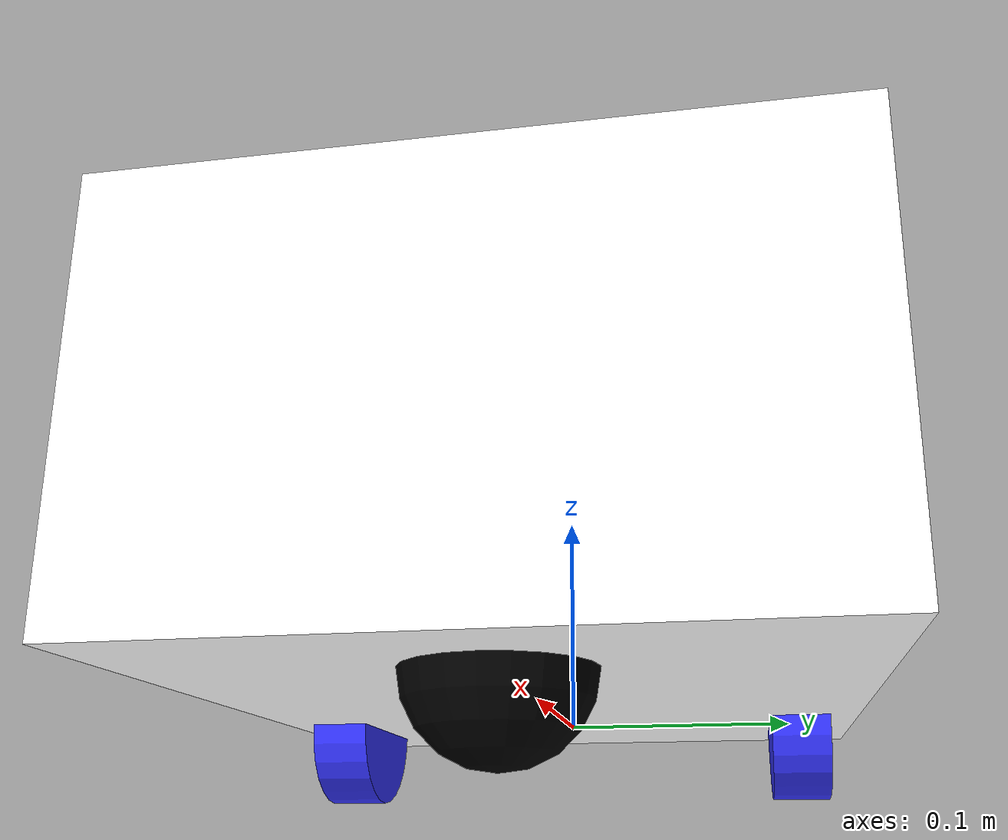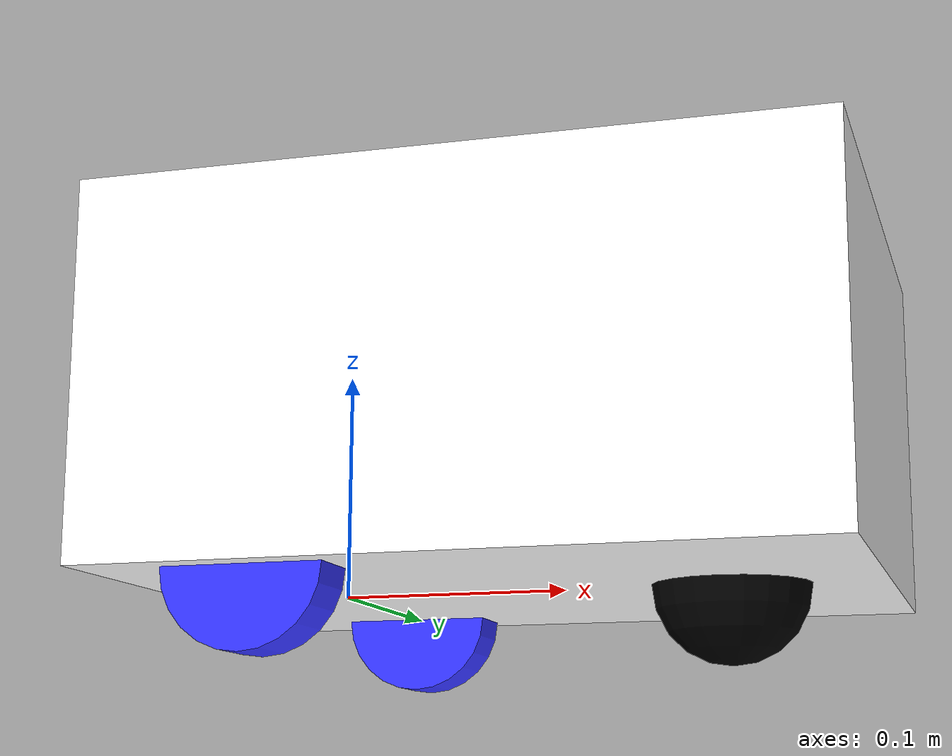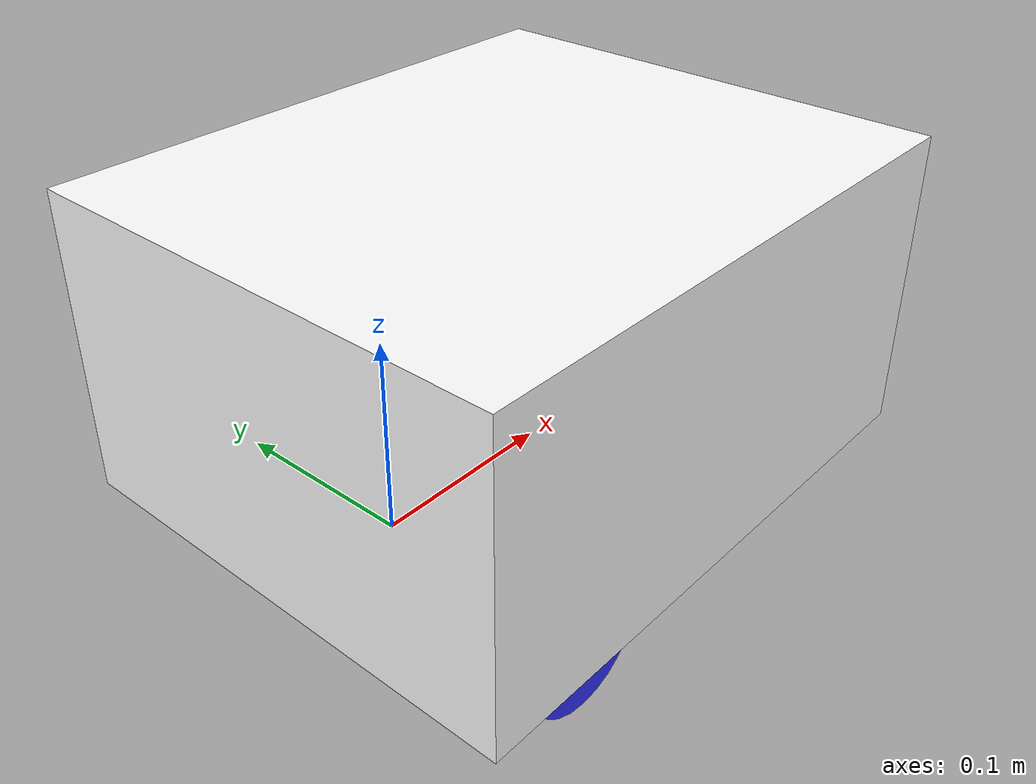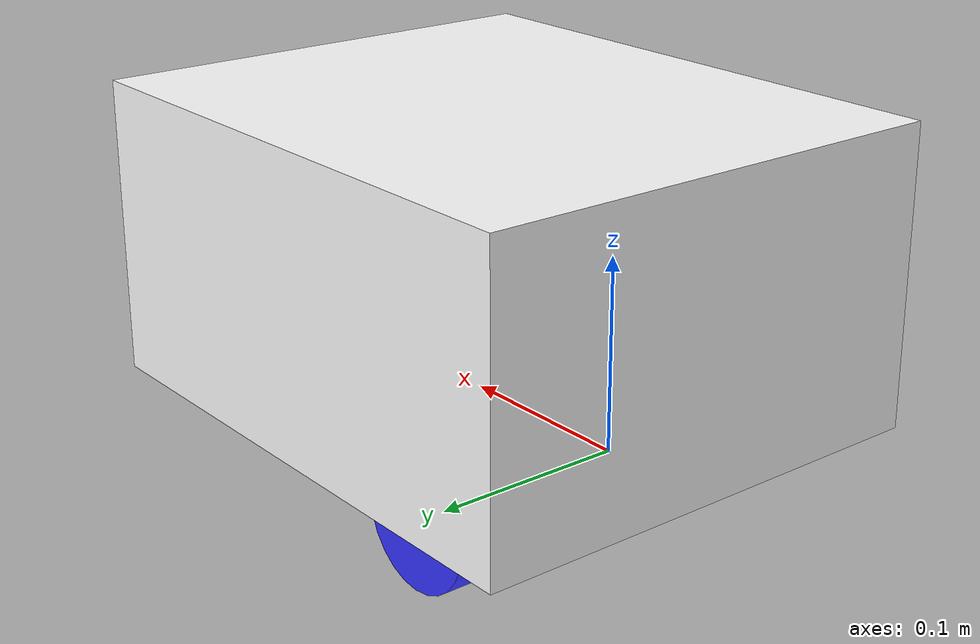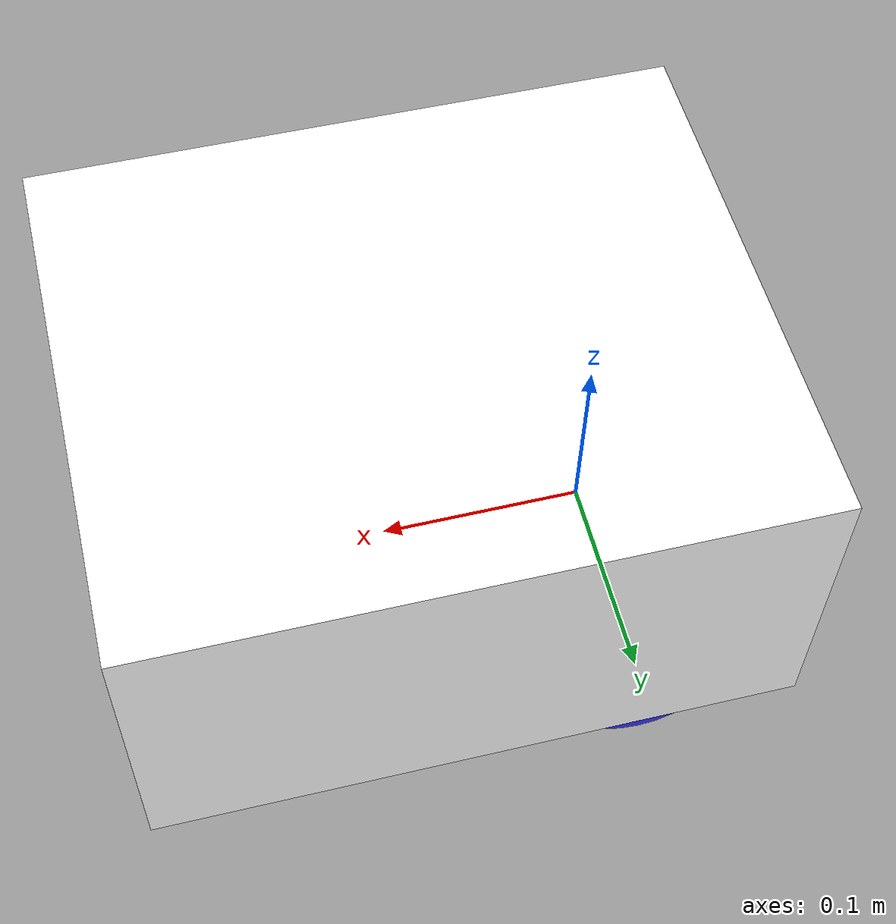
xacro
<?xml version="1.0"?>
<robot xmlns:xacro="http://www.ros.org/wiki/xacro" >

    <xacro:include filename="inertial_macros.xacro"/>

    <material name="white">
        <color rgba="1 1 1 1"/>
    </material>

    <material name="orange">
        <color rgba="1 0.3 0.1 1"/>
    </material>

    <material name="blue">
        <color rgba="0.2 0.2 1 1"/>
    </material>

    <material name="red">
        <color rgba="1 0 0 1"/>
    </material>

    <material name="black">
        <color rgba="0 0 0 1"/>
    </material>

    <!-- PROPERTY -->
    <xacro:property name="longueur_robot" value="0.308" />
    <xacro:property name="largeur_robot" value="0.258" />
    <xacro:property name="hauteur_robot" value="0.158" />
    <xacro:property name="distance_cir" value="0.07" />
    <xacro:property name="masse_robot" value="1" />

    <xacro:property name="distance_cir_roue" value="${(largeur_robot/2)-longueur_roue}" />
    <xacro:property name="longueur_roue" value="0.025" />
    <xacro:property name="diametre_roue" value="0.068" />
    <xacro:property name="masse_roue" value="0.1" />

    <xacro:property name="distance_caster" value="${longueur_robot-0.066}" />
    <xacro:property name="diametre_caster" value="${diametre_roue}" />
    <xacro:property name="masse_caster" value="0.1" />

    <!-- BASE LINK -->
    <link name="base_link"></link>

    <!-- BASE LINK FOOTPRINT -->
    <joint name="base_footprint_joint" type="fixed">
        <parent link="base_link"/>
        <child link="base_footprint"/>
        <origin xyz="0 0 -${diametre_roue/2}" rpy="0 0 0"/>
    </joint>

    <link name="base_footprint">
    </link>

    <!-- CHASSIS -->
    <joint name="chassis_joint" type="fixed">
        <parent link="base_link"/>
        <child link="chassis"/>
        <origin xyz="-${distance_cir} 0 0"/>
    </joint>

    <link name="chassis">
        <visual>
            <origin xyz="${longueur_robot/2} 0 ${hauteur_robot/2}" rpy="0 0 0"/>
            <geometry>
                <box size="${longueur_robot} ${largeur_robot} ${hauteur_robot}"/>
            </geometry>
            <material name="white"/>
        </visual>

        <collision>
            <origin xyz="${longueur_robot/2} 0 ${hauteur_robot/2}" rpy="0 0 0"/>
            <geometry>
                <box size="${longueur_robot} ${largeur_robot} ${hauteur_robot}"/>
            </geometry>
        </collision>

        <xacro:inertial_box mass="${masse_robot}" x="${longueur_robot}" y="${largeur_robot}" z="${hauteur_robot}">
            <origin xyz="${longueur_robot/2} 0 ${hauteur_robot/2}" rpy="0 0 0"/>
        </xacro:inertial_box>
    </link>

    <gazebo reference="chassis">
        <material>Gazebo/White</material>
    </gazebo>

    <!-- LEFT WHEEL -->
    <joint name="left_wheel_joint" type="continuous">
        <parent link="base_link"/>
        <child link="left_wheel"/>
        <origin xyz="0 ${distance_cir_roue} 0" rpy="-${pi/2} 0 0"/>
        <axis xyz="0 0 1"/>
    </joint>

    <link name="left_wheel">
        <visual>
            <geometry>
                <cylinder length="${longueur_roue}" radius="${diametre_roue/2}" />
            </geometry>
            <material name="blue"/>
        </visual>

        <collision>
            <geometry>
                <cylinder length="${longueur_roue}" radius="${diametre_roue/2}" />
            </geometry>
        </collision>

        <xacro:inertial_cylinder mass="${masse_roue}" length="${longueur_roue}" radius="${diametre_roue/2}">
            <origin xyz="0 0 0" rpy="0 0 0"/>
        </xacro:inertial_cylinder>
    </link>

    <gazebo reference="left_wheel">
        <material>Gazebo/Blue</material>
    </gazebo>

    <!-- RIGHT WHEEL -->
    <joint name="right_wheel_joint" type="continuous">
        <parent link="base_link"/>
        <child link="right_wheel"/>
        <origin xyz="0 -${distance_cir_roue} 0" rpy="${pi/2} 0 0"/>
        <axis xyz="0 0 -1"/>
    </joint>

    <link name="right_wheel">
        <visual>
            <geometry>
                <cylinder length="${longueur_roue}" radius="${diametre_roue/2}" />
            </geometry>
            <material name="blue"/>
        </visual>

        <collision>
            <geometry>
                <cylinder length="${longueur_roue}" radius="${diametre_roue/2}" />
            </geometry>
        </collision>

        <xacro:inertial_cylinder mass="${masse_roue}" length="${longueur_roue}" radius="${diametre_roue/2}">
            <origin xyz="0 0 0" rpy="0 0 0"/>
        </xacro:inertial_cylinder>
    </link>

    <gazebo reference="right_wheel">
        <material>Gazebo/Blue</material>
    </gazebo>

    <!-- CASTER WHEEL -->
    <joint name="caster_wheel_joint" type="fixed">
        <parent link="chassis"/>
        <child link="caster_wheel"/>
        <origin xyz="${distance_caster} 0 0" rpy="0 0 0"/>
    </joint>

    <link name="caster_wheel">
        <visual>
            <geometry>
                <sphere radius="${diametre_caster/2}" />
            </geometry>
            <material name="black"/>
        </visual>

        <collision>
            <geometry>
                <sphere radius="${diametre_caster/2}" />
            </geometry>
        </collision>

        <xacro:inertial_sphere mass="${masse_caster}" radius="${diametre_caster/2}">
            <origin xyz="0 0 0" rpy="0 0 0"/>
        </xacro:inertial_sphere>
    </link>

    <gazebo reference="caster_wheel">
        <material>Gazebo/Black</material>
        <mu1 value="0.001"/>
        <mu2 value="0.001"/>
    </gazebo>

</robot>
